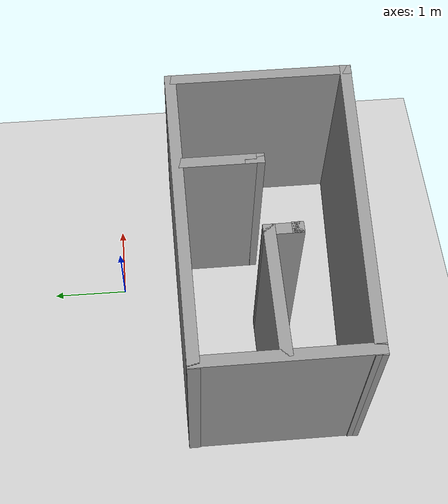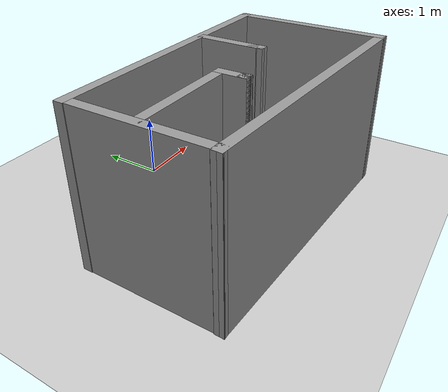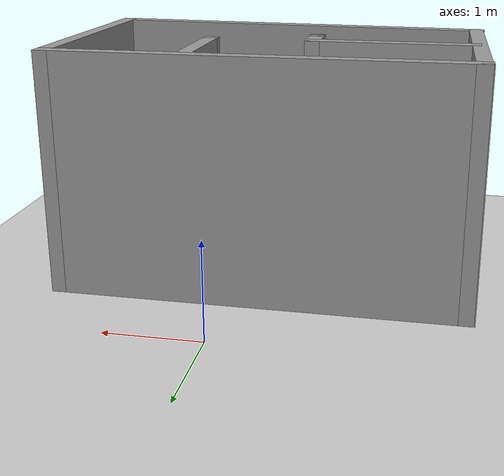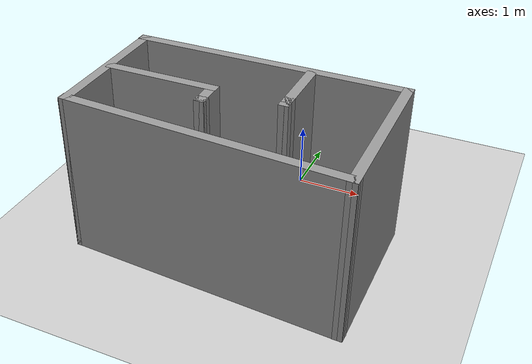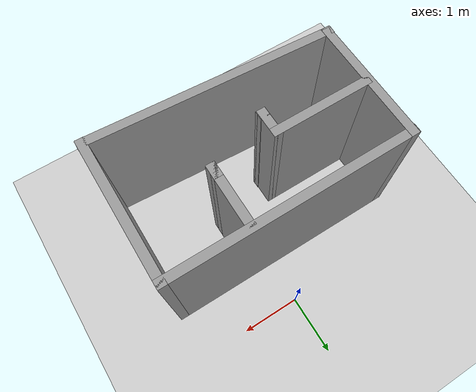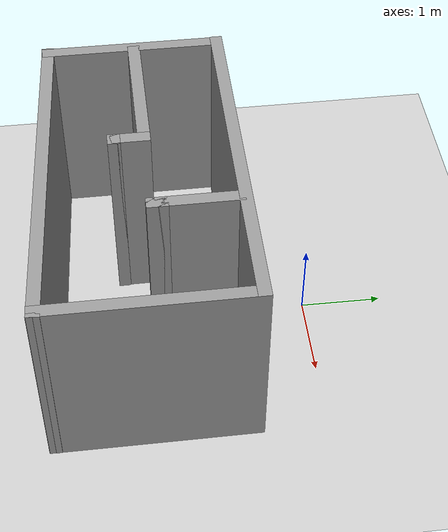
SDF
<sdf version='1.7'>
   <world name="my_world">

    <include>
      <uri>model://sun</uri>
    </include>
    <include>
      <uri>model://ground_plane</uri>
    </include>
    <include>
      <uri>model://My_Home</uri>
</include>

       </world>
</sdf>

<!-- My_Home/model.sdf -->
<sdf version='1.6'>
  <model name='My_Home'>
    <pose frame=''>-0.3 -2.0072 0 0 -0 0</pose>
    <link name='Wall_0'>
      <collision name='Wall_0_Collision'>
        <geometry>
          <box>
            <size>2.25 0.15 2.5</size>
          </box>
        </geometry>
        <pose frame=''>0 0 1.25 0 -0 0</pose>
      </collision>
      <visual name='Wall_0_Visual'>
        <pose frame=''>0 0 1.25 0 -0 0</pose>
        <geometry>
          <box>
            <size>2.25 0.15 2.5</size>
          </box>
        </geometry>
        <material>
          <script>
            <uri>file://media/materials/scripts/gazebo.material</uri>
            <name>Gazebo/Grey</name>
          </script>
          <ambient>1 1 1 1</ambient>
        </material>
        <meta>
          <layer>0</layer>
        </meta>
      </visual>
      <pose frame=''>-2.05 0.127202 0 0 -0 1.5708</pose>
    </link>
    <link name='Wall_1'>
      <collision name='Wall_1_Collision'>
        <geometry>
          <box>
            <size>4.27 0.15 2.5</size>
          </box>
        </geometry>
        <pose frame=''>0 0 1.25 0 -0 0</pose>
      </collision>
      <visual name='Wall_1_Visual'>
        <pose frame=''>0 0 1.25 0 -0 0</pose>
        <geometry>
          <box>
            <size>4.27 0.15 2.5</size>
          </box>
        </geometry>
        <material>
          <script>
            <uri>file://media/materials/scripts/gazebo.material</uri>
            <name>Gazebo/Grey</name>
          </script>
          <ambient>1 1 1 1</ambient>
        </material>
        <meta>
          <layer>0</layer>
        </meta>
      </visual>
      <pose frame=''>-0 1.1772 0 0 -0 0</pose>
    </link>
    <link name='Wall_10'>
      <collision name='Wall_10_Collision'>
        <geometry>
          <box>
            <size>1.75 0.15 2.5</size>
          </box>
        </geometry>
        <pose frame=''>0 0 1.25 0 -0 0</pose>
      </collision>
      <visual name='Wall_10_Visual'>
        <pose frame=''>0 0 1.25 0 -0 0</pose>
        <geometry>
          <box>
            <size>1.75 0.15 2.5</size>
          </box>
        </geometry>
        <material>
          <script>
            <uri>file://media/materials/scripts/gazebo.material</uri>
            <name>Gazebo/Grey</name>
          </script>
          <ambient>1 1 1 1</ambient>
        </material>
        <meta>
          <layer>0</layer>
        </meta>
      </visual>
      <pose frame=''>-1.19 0.137202 0 0 -0 0</pose>
    </link>
    <link name='Wall_11'>
      <collision name='Wall_11_Collision'>
        <geometry>
          <box>
            <size>0.5 0.15 2.5</size>
          </box>
        </geometry>
        <pose frame=''>0 0 1.25 0 -0 0</pose>
      </collision>
      <visual name='Wall_11_Visual'>
        <pose frame=''>0 0 1.25 0 -0 0</pose>
        <geometry>
          <box>
            <size>0.5 0.15 2.5</size>
          </box>
        </geometry>
        <material>
          <script>
            <uri>file://media/materials/scripts/gazebo.material</uri>
            <name>Gazebo/Grey</name>
          </script>
          <ambient>1 1 1 1</ambient>
        </material>
        <meta>
          <layer>0</layer>
        </meta>
      </visual>
      <pose frame=''>-0.39 -0.037798 0 0 -0 -1.5708</pose>
    </link>
    <link name='Wall_12'>
      <collision name='Wall_12_Collision'>
        <geometry>
          <box>
            <size>0.15 0.15 2.5</size>
          </box>
        </geometry>
        <pose frame=''>0 0 1.25 0 -0 0</pose>
      </collision>
      <visual name='Wall_12_Visual'>
        <pose frame=''>0 0 1.25 0 -0 0</pose>
        <geometry>
          <box>
            <size>0.15 0.15 2.5</size>
          </box>
        </geometry>
        <material>
          <script>
            <uri>file://media/materials/scripts/gazebo.material</uri>
            <name>Gazebo/Grey</name>
          </script>
          <ambient>1 1 1 1</ambient>
        </material>
        <meta>
          <layer>0</layer>
        </meta>
      </visual>
      <pose frame=''>-0.39 -0.212798 0 0 -0 0</pose>
    </link>
    <link name='Wall_13'>
      <collision name='Wall_13_Collision'>
        <geometry>
          <box>
            <size>0.16 0.15 2.5</size>
          </box>
        </geometry>
        <pose frame=''>0 0 1.25 0 -0 0</pose>
      </collision>
      <visual name='Wall_13_Visual'>
        <pose frame=''>0 0 1.25 0 -0 0</pose>
        <geometry>
          <box>
            <size>0.16 0.15 2.5</size>
          </box>
        </geometry>
        <material>
          <script>
            <uri>file://media/materials/scripts/gazebo.material</uri>
            <name>Gazebo/Grey</name>
          </script>
          <ambient>1 1 1 1</ambient>
        </material>
        <meta>
          <layer>0</layer>
        </meta>
      </visual>
      <pose frame=''>-0.385 -0.212798 0 0 -0 0</pose>
    </link>
    <link name='Wall_14'>
      <collision name='Wall_14_Collision'>
        <geometry>
          <box>
            <size>0.16 0.15 2.5</size>
          </box>
        </geometry>
        <pose frame=''>0 0 1.25 0 -0 0</pose>
      </collision>
      <visual name='Wall_14_Visual'>
        <pose frame=''>0 0 1.25 0 -0 0</pose>
        <geometry>
          <box>
            <size>0.16 0.15 2.5</size>
          </box>
        </geometry>
        <material>
          <script>
            <uri>file://media/materials/scripts/gazebo.material</uri>
            <name>Gazebo/Grey</name>
          </script>
          <ambient>1 1 1 1</ambient>
        </material>
        <meta>
          <layer>0</layer>
        </meta>
      </visual>
      <pose frame=''>-0.385 -0.212798 0 0 -0 3.14159</pose>
    </link>
    <link name='Wall_16'>
      <collision name='Wall_16_Collision'>
        <geometry>
          <box>
            <size>1 0.15 2.5</size>
          </box>
        </geometry>
        <pose frame=''>0 0 1.25 0 -0 0</pose>
      </collision>
      <visual name='Wall_16_Visual'>
        <pose frame=''>0 0 1.25 0 -0 0</pose>
        <geometry>
          <box>
            <size>1 0.15 2.5</size>
          </box>
        </geometry>
        <material>
          <script>
            <uri>file://media/materials/scripts/gazebo.material</uri>
            <name>Gazebo/Grey</name>
          </script>
          <ambient>1 1 1 1</ambient>
        </material>
        <meta>
          <layer>0</layer>
        </meta>
      </visual>
      <pose frame=''>0.68 0.672202 0 0 -0 -1.5708</pose>
    </link>
    <link name='Wall_17'>
      <collision name='Wall_17_Collision'>
        <geometry>
          <box>
            <size>0.25 0.15 2.5</size>
          </box>
        </geometry>
        <pose frame=''>0 0 1.25 0 -0 0</pose>
      </collision>
      <visual name='Wall_17_Visual'>
        <pose frame=''>0 0 1.25 0 -0 0</pose>
        <geometry>
          <box>
            <size>0.25 0.15 2.5</size>
          </box>
        </geometry>
        <material>
          <script>
            <uri>file://media/materials/scripts/gazebo.material</uri>
            <name>Gazebo/Grey</name>
          </script>
          <ambient>1 1 1 1</ambient>
        </material>
        <meta>
          <layer>0</layer>
        </meta>
      </visual>
      <pose frame=''>0.68 0.197202 0 0 -0 -1.5708</pose>
    </link>
    <link name='Wall_18'>
      <collision name='Wall_18_Collision'>
        <geometry>
          <box>
            <size>0.25 0.15 2.5</size>
          </box>
        </geometry>
        <pose frame=''>0 0 1.25 0 -0 0</pose>
      </collision>
      <visual name='Wall_18_Visual'>
        <pose frame=''>0 0 1.25 0 -0 0</pose>
        <geometry>
          <box>
            <size>0.25 0.15 2.5</size>
          </box>
        </geometry>
        <material>
          <script>
            <uri>file://media/materials/scripts/gazebo.material</uri>
            <name>Gazebo/Grey</name>
          </script>
          <ambient>1 1 1 1</ambient>
        </material>
        <meta>
          <layer>0</layer>
        </meta>
      </visual>
      <pose frame=''>0.68 0.197202 0 0 -0 1.5708</pose>
    </link>
    <link name='Wall_2'>
      <collision name='Wall_2_Collision'>
        <geometry>
          <box>
            <size>2.5 0.15 2.5</size>
          </box>
        </geometry>
        <pose frame=''>0 0 1.25 0 -0 0</pose>
      </collision>
      <visual name='Wall_2_Visual'>
        <pose frame=''>0 0 1.25 0 -0 0</pose>
        <geometry>
          <box>
            <size>2.5 0.15 2.5</size>
          </box>
        </geometry>
        <material>
          <script>
            <uri>file://media/materials/scripts/gazebo.material</uri>
            <name>Gazebo/Grey</name>
          </script>
          <ambient>1 1 1 1</ambient>
        </material>
        <meta>
          <layer>0</layer>
        </meta>
      </visual>
      <pose frame=''>2.06 0.002202 0 0 -0 -1.5708</pose>
    </link>
    <link name='Wall_3'>
      <collision name='Wall_3_Collision'>
        <geometry>
          <box>
            <size>4.27758 0.15 2.5</size>
          </box>
        </geometry>
        <pose frame=''>0 0 1.25 0 -0 0</pose>
      </collision>
      <visual name='Wall_3_Visual'>
        <pose frame=''>0 0 1.25 0 -0 0</pose>
        <geometry>
          <box>
            <size>4.27758 0.15 2.5</size>
          </box>
        </geometry>
        <material>
          <script>
            <uri>file://media/materials/scripts/gazebo.material</uri>
            <name>Gazebo/Grey</name>
          </script>
          <ambient>1 1 1 1</ambient>
        </material>
        <meta>
          <layer>0</layer>
        </meta>
      </visual>
      <pose frame=''>-0 -1.0478 0 0 -0 3.08099</pose>
    </link>
    <link name='Wall_4'>
      <collision name='Wall_4_Collision'>
        <geometry>
          <box>
            <size>0.15 0.15 2.5</size>
          </box>
        </geometry>
        <pose frame=''>0 0 1.25 0 -0 0</pose>
      </collision>
      <visual name='Wall_4_Visual'>
        <pose frame=''>0 0 1.25 0 -0 0</pose>
        <geometry>
          <box>
            <size>0.15 0.15 2.5</size>
          </box>
        </geometry>
        <material>
          <script>
            <uri>file://media/materials/scripts/gazebo.material</uri>
            <name>Gazebo/Grey</name>
          </script>
          <ambient>1 1 1 1</ambient>
        </material>
        <meta>
          <layer>0</layer>
        </meta>
      </visual>
      <pose frame=''>-2.06 -0.922798 0 0 -0 0</pose>
    </link>
    <static>1</static>
  </model>
</sdf>
